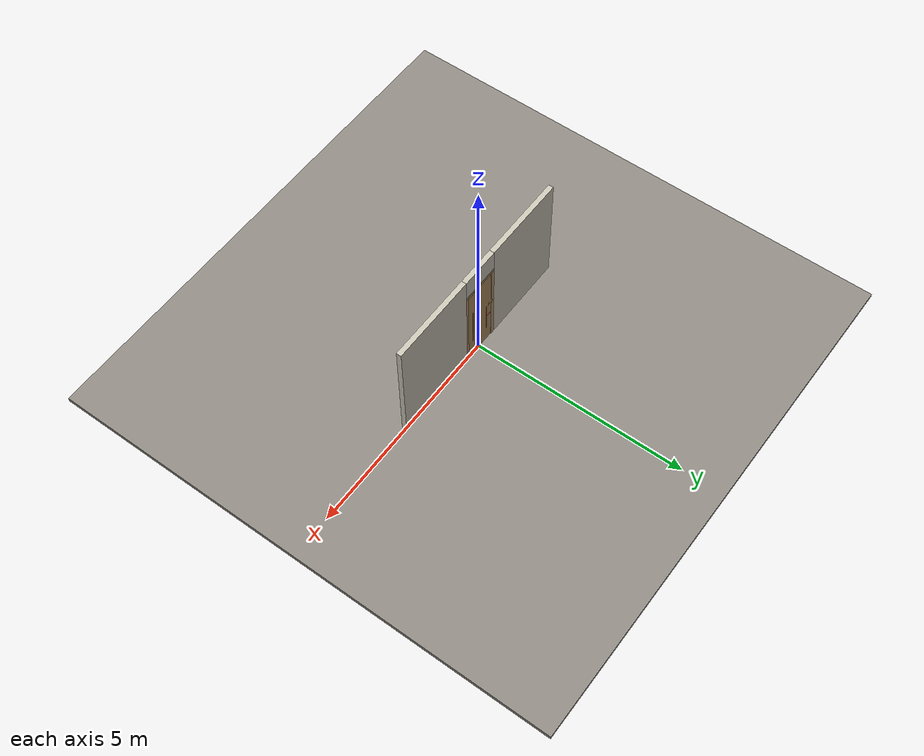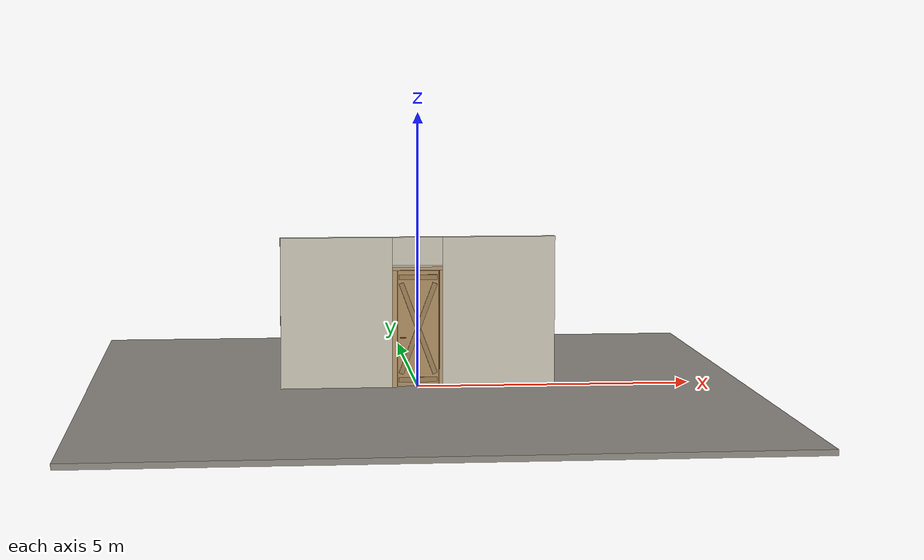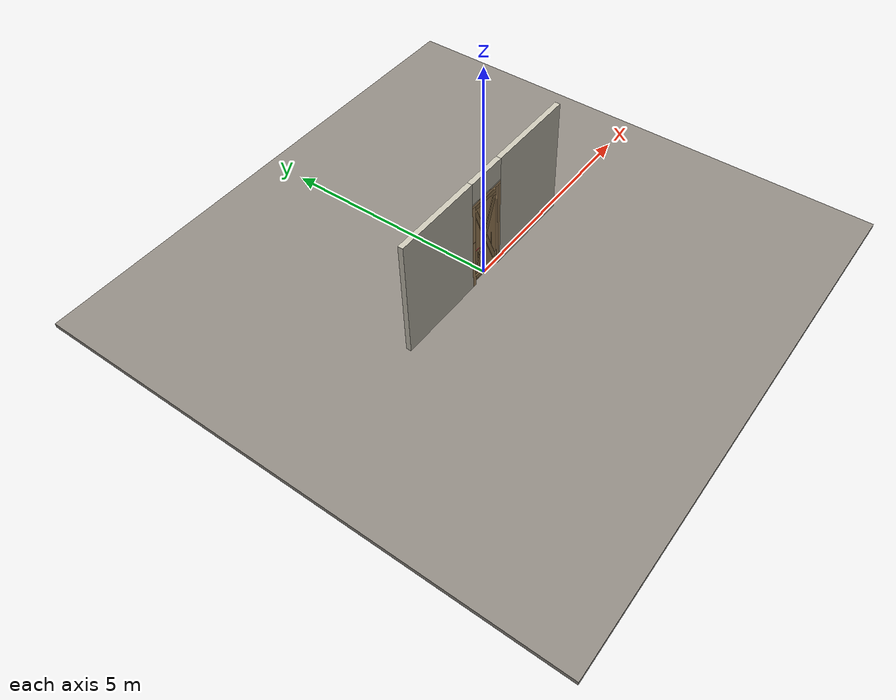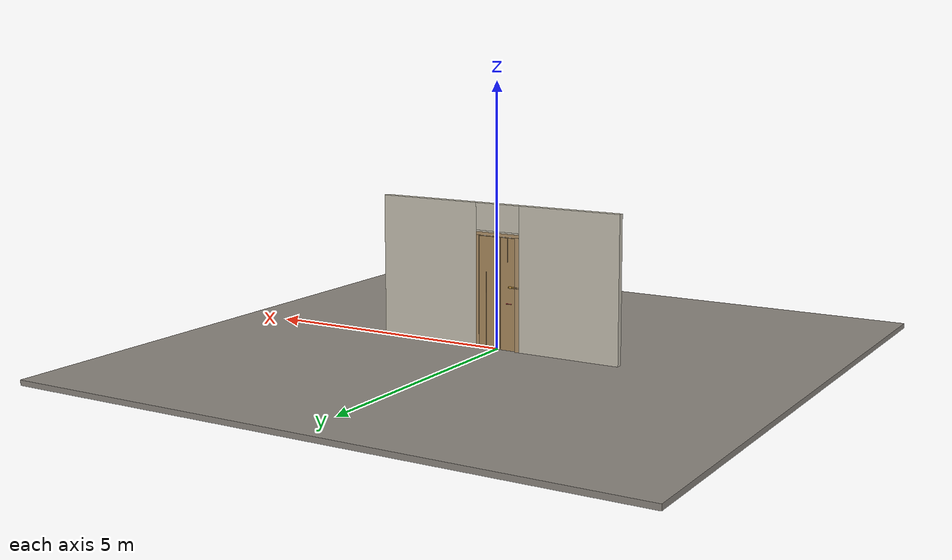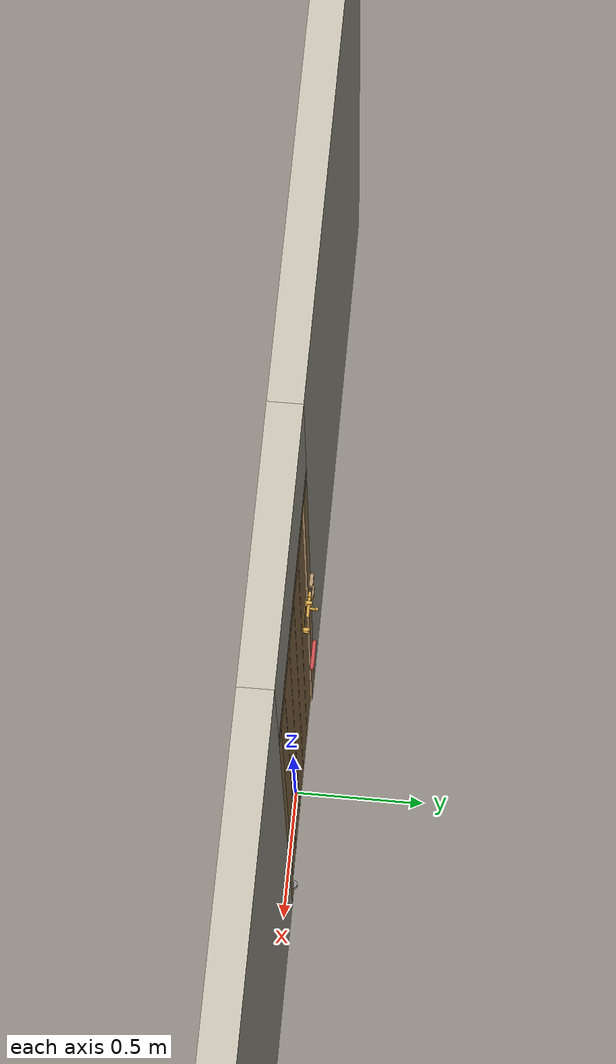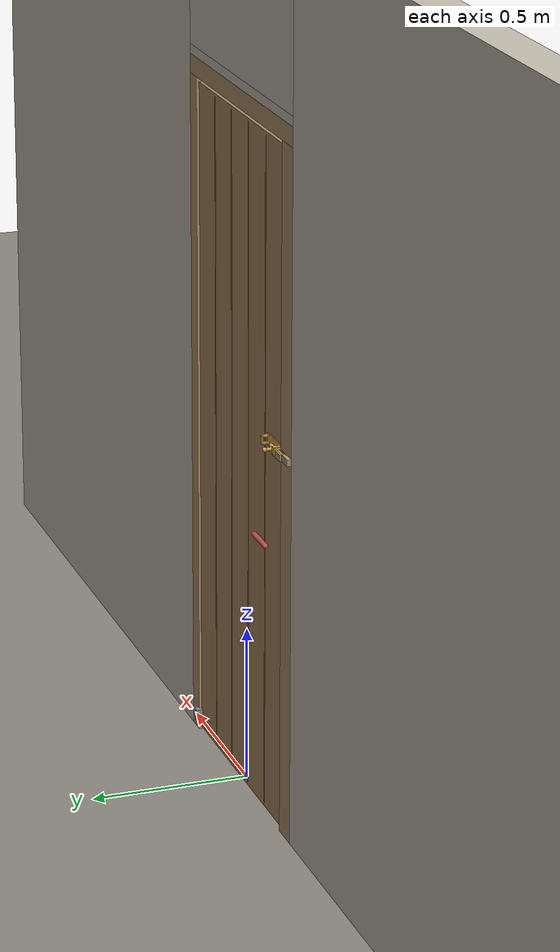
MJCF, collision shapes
<?xml version="1.0" ?>
<mujoco model="db0855_swing_single_full">
  <compiler angle="radian" meshdir="../../hardware" texturedir="../../textures" autolimits="true" inertiafromgeom="false"/>
  <option timestep="0.002" integrator="implicitfast" cone="elliptic" impratio="10" noslip_iterations="3">
    <flag multiccd="enable"/>
  </option>
  <size memory="16M"/>
  <default>
    <geom condim="4" solref="0.005 1" solimp="0.95 0.99 0.001"/>
    <joint solreflimit="0.005 1" solimplimit="0.95 0.99 0.001"/>
    <tendon solreflimit="0.005 1"/>
    <equality solref="0.002 1"/>
  </default>
  <visual>
    <headlight ambient="0.4 0.4 0.4" diffuse="0.7 0.7 0.7" specular="0.2 0.2 0.2"/>
    <quality shadowsize="4096"/>
    <map znear="0.01" zfar="60"/>
  </visual>
  <asset>
    <mesh name="hinge_7678ceaa91" file="hinge_7678ceaa91.obj"/>
    <mesh name="hinge_jamb_24fdb06e8a" file="hinge_jamb_24fdb06e8a.obj"/>
    <mesh name="ring_cc5c941a8a" file="ring_cc5c941a8a.obj"/>
    <material name="mat_floor" rgba="0.55 0.53 0.5 1" specular="0.2" shininess="0.15" reflectance="0"/>
    <material name="mat_wall" rgba="0.78 0.76 0.7 1" specular="0.2" shininess="0.1" reflectance="0"/>
    <material name="mat_hinge" rgba="0.55 0.56 0.58 1" specular="0.8" shininess="0.55" reflectance="0.4"/>
    <material name="mat_leaf" rgba="0.67 0.543 0.367 1" specular="0.2" shininess="0.45" reflectance="0"/>
    <material name="mat_leaf_brace" rgba="0.603 0.489 0.331 1" specular="0.2" shininess="0.2" reflectance="0"/>
    <material name="mat_op_wrought_iron" rgba="0.08 0.08 0.09 1" specular="0.56" shininess="0.25" reflectance="0.24"/>
    <material name="mat_op_brass" rgba="0.85 0.66 0.3 1" specular="0.8" shininess="0.75" reflectance="0.4"/>
    <material name="mat_frame" rgba="0.7 0.58 0.42 1" specular="0.2" shininess="0.5" reflectance="0"/>
    <texture name="skybox" type="skybox" builtin="gradient" rgb1="0.6 0.7 0.85" rgb2="0.9 0.92 0.95" width="256" height="256"/>
  </asset>
  <worldbody>
    <light name="sun" pos="1.5 -2.5 4" dir="-0.3 0.5 -0.8" directional="true" diffuse="0.8 0.8 0.8" specular="0.3 0.3 0.3" castshadow="true"/>
    <light name="fill" pos="-1.5 2.5 3" dir="0.3 -0.5 -0.7" directional="true" diffuse="0.35 0.35 0.4" castshadow="false"/>
    <camera name="robot_view" pos="0 -2.666313 1.812087" xyaxes="1 0 0 0 0.26963 0.962964" fovy="52"/>
    <camera name="far_view" pos="0 2.609312 1.812087" xyaxes="-1 0 0 0 -0.26963 0.962964" fovy="52"/>
    <camera name="iso" pos="-2.004737 -2.244263 2.234138" xyaxes="0.741536 -0.670913 0 0.242917 0.268487 0.932151" fovy="46"/>
    <camera name="detail_handle" pos="-0.095 -0.854 1.185" xyaxes="0.97561 0.219512 0 -0.070934 0.315262 0.94635" fovy="38"/>
    <geom name="floor" type="box" size="6 6 0.05" pos="0 0 -0.05" material="mat_floor" group="0" contype="1" conaffinity="1" friction="0.8 0.005 0.0001" density="2400"/>
    <geom name="wall_left" type="box" size="1.0125 0.0575 1.3735" pos="-1.4875 -0.0285 1.3735" material="mat_wall" group="0" contype="1" conaffinity="1" friction="0.6 0.005 0.0001" density="800"/>
    <geom name="wall_right" type="box" size="1.0275 0.0575 1.3735" pos="1.4725 -0.0285 1.3735" material="mat_wall" group="0" contype="1" conaffinity="1" friction="0.6 0.005 0.0001" density="800"/>
    <geom name="wall_header" type="box" size="0.46 0.0575 0.255" pos="-0.015 -0.0285 2.492" material="mat_wall" group="0" contype="1" conaffinity="1" friction="0.6 0.005 0.0001" density="800"/>
    <geom name="hinge_0_jamb" type="mesh" mesh="hinge_jamb_24fdb06e8a" pos="0.382 0.029 0.259" quat="0 0 0 1" material="mat_hinge" group="1" contype="0" conaffinity="0" density="7850"/>
    <geom name="hinge_1_jamb" type="mesh" mesh="hinge_jamb_24fdb06e8a" pos="0.382 0.029 1.0708" quat="0 0 0 1" material="mat_hinge" group="1" contype="0" conaffinity="0" density="7850"/>
    <geom name="hinge_2_jamb" type="mesh" mesh="hinge_jamb_24fdb06e8a" pos="0.382 0.029 1.9526" quat="0 0 0 1" material="mat_hinge" group="1" contype="0" conaffinity="0" density="7850"/>
    <geom name="leaf_aux_bolt_keeper_b" type="box" size="0.014 0.003 0.0005" pos="-0.3845 0.034 1.202" quat="0.5 0.5 0.5 0.5" material="mat_op_brass" group="1" contype="0" conaffinity="0" density="7800"/>
    <geom name="leaf_aux_bolt_keeper_l" type="box" size="0.003 0.01 0.0005" pos="-0.3845 0.023 1.215" quat="0.5 0.5 0.5 0.5" material="mat_op_brass" group="1" contype="0" conaffinity="0" density="7800"/>
    <geom name="leaf_aux_bolt_keeper_t" type="box" size="0.014 0.003 0.0005" pos="-0.3845 0.034 1.228" quat="0.5 0.5 0.5 0.5" material="mat_op_brass" group="1" contype="0" conaffinity="0" density="7800"/>
    <geom name="leaf_aux_bolt_keeper_r" type="box" size="0.003 0.01 0.0005" pos="-0.3845 0.045 1.215" quat="0.5 0.5 0.5 0.5" material="mat_op_brass" group="1" contype="0" conaffinity="0" density="7800"/>
    <geom name="jamb_hinge" type="box" size="0.03 0.0575 1.0735" pos="0.415 -0.0285 1.0735" material="mat_frame" group="0" contype="1" conaffinity="1" friction="0.6 0.005 0.0001" density="750"/>
    <geom name="strike_1215_wall_n" type="box" size="0.045 0.056 0.01" pos="-0.43 -0.03 1.215" material="mat_frame" group="0" contype="1" conaffinity="1" friction="0.6 0.005 0.0001" density="750"/>
    <geom name="strike_1215_wall_p" type="box" size="0.022 0.003 0.01" pos="-0.407 0.045 1.215" material="mat_frame" group="0" contype="1" conaffinity="1" friction="0.6 0.005 0.0001" density="750"/>
    <geom name="strike_1215_back" type="box" size="0.024 0.008 0.01" pos="-0.451 0.034 1.215" material="mat_frame" group="0" contype="1" conaffinity="1" friction="0.6 0.005 0.0001" density="750"/>
    <geom name="jamb_strike_0" type="box" size="0.045 0.0575 0.6025" pos="-0.43 -0.0285 0.6025" material="mat_frame" group="0" contype="1" conaffinity="1" friction="0.6 0.005 0.0001" density="750"/>
    <geom name="jamb_strike_1" type="box" size="0.045 0.0575 0.461" pos="-0.43 -0.0285 1.686" material="mat_frame" group="0" contype="1" conaffinity="1" friction="0.6 0.005 0.0001" density="750"/>
    <geom name="jamb_head" type="box" size="0.46 0.0575 0.03" pos="-0.015 -0.0285 2.177" material="mat_frame" group="0" contype="1" conaffinity="1" friction="0.6 0.005 0.0001" density="750"/>
    <geom name="head_stud" type="box" size="0.46 0.0575 0.015" pos="-0.015 -0.0285 2.222" material="mat_wall" group="0" contype="1" conaffinity="1" friction="0.6 0.005 0.0001" density="500"/>
    <geom name="stop_hinge" type="box" size="0.0055 0.016 1.0735" pos="0.3795 -0.0385 1.0735" material="mat_frame" group="0" contype="1" conaffinity="1" friction="0.6 0.005 0.0001" density="750"/>
    <geom name="stop_strike" type="box" size="0.0055 0.016 1.0735" pos="-0.3795 -0.0385 1.0735" material="mat_frame" group="0" contype="1" conaffinity="1" friction="0.6 0.005 0.0001" density="750"/>
    <geom name="stop_head" type="box" size="0.385 0.016 0.0055" pos="0 -0.0385 2.1415" material="mat_frame" group="0" contype="1" conaffinity="1" friction="0.6 0.005 0.0001" density="750"/>
    <site name="approach_point" pos="0 -1.5 0" quat="1 0 0 0" size="0.05" rgba="0.2 0.9 0.2 0.5" group="4"/>
    <site name="goal_point" pos="0 1.5 0" quat="1 0 0 0" size="0.05" rgba="0.2 0.9 0.2 0.5" group="4"/>
    <site name="door_plane_center" pos="0 0 1.0735" quat="1 0 0 0" size="0.02" rgba="0.2 0.9 0.2 0.5" group="4"/>
    <body name="leaf_riser" pos="0.385 0 0">
      <inertial pos="-0.003 0.029 0.055" mass="0.174012" quat="-0.5 0.5 0.5 0.5" diaginertia="0.000017053 0.00002732 0.00002732"/>
      <joint name="leaf_rise" type="slide" axis="0 0 1" limited="true" range="0 0.0176" damping="1" armature="0.5"/>
      <geom name="leaf_riser_marker" type="cylinder" size="0.014 0.018" pos="-0.003 0.029 0.055" material="mat_hinge" group="1" contype="0" conaffinity="0" density="7850"/>
      <body name="leaf" pos="0 0 0">
        <inertial pos="-0.383926 0.000521 1.069197" mass="30.383705" quat="0.50114 -0.50001 -0.499983 -0.498864" diaginertia="1.563852311 11.193999042 12.743251071"/>
        <joint name="leaf_hinge" type="hinge" axis="0 0 -1" pos="-0.003 0.029 0" limited="true" range="0 1.396263" damping="0.179937" frictionloss="1.122697" armature="0.02"/>
        <geom name="leaf_slab" type="box" size="0.381 0.022 1.0618" pos="-0.384 0 1.0708" material="mat_leaf" group="0" contype="1" conaffinity="1" friction="0.35 0.005 0.0001" density="1"/>
        <geom name="leaf_plank_gap_1" type="box" size="0.002 0.023 1.0518" pos="-0.1554 0 1.0708" material="mat_leaf_brace" group="1" contype="0" conaffinity="0" density="1"/>
        <geom name="leaf_plank_gap_2" type="box" size="0.002 0.023 1.0518" pos="-0.3078 0 1.0708" material="mat_leaf_brace" group="1" contype="0" conaffinity="0" density="1"/>
        <geom name="leaf_plank_gap_3" type="box" size="0.002 0.023 1.0518" pos="-0.4602 0 1.0708" material="mat_leaf_brace" group="1" contype="0" conaffinity="0" density="1"/>
        <geom name="leaf_plank_gap_4" type="box" size="0.002 0.023 1.0518" pos="-0.6126 0 1.0708" material="mat_leaf_brace" group="1" contype="0" conaffinity="0" density="1"/>
        <geom name="leaf_batten_12" type="box" size="0.351 0.01 0.045" pos="-0.384 -0.032 0.129" material="mat_leaf_brace" group="1" contype="0" conaffinity="0" density="1"/>
        <geom name="leaf_batten_201" type="box" size="0.351 0.01 0.045" pos="-0.384 -0.032 2.0126" material="mat_leaf_brace" group="1" contype="0" conaffinity="0" density="1"/>
        <geom name="leaf_brace_z" type="box" size="0.88656 0.01 0.045" pos="-0.384 -0.032 1.0708" quat="0.821489 0 0.570225 0" material="mat_leaf_brace" group="1" contype="0" conaffinity="0" density="1"/>
        <geom name="leaf_brace_x" type="box" size="0.88656 0.01 0.045" pos="-0.384 -0.032 1.0708" quat="0.821489 0 -0.570225 0" material="mat_leaf_brace" group="1" contype="0" conaffinity="0" density="1"/>
        <geom name="hinge_0" type="mesh" mesh="hinge_7678ceaa91" pos="-0.003 0.029 0.259" quat="0 0 0 1" material="mat_hinge" group="1" contype="0" conaffinity="0" density="7850"/>
        <geom name="hinge_1" type="mesh" mesh="hinge_7678ceaa91" pos="-0.003 0.029 1.0708" quat="0 0 0 1" material="mat_hinge" group="1" contype="0" conaffinity="0" density="7850"/>
        <geom name="hinge_2" type="mesh" mesh="hinge_7678ceaa91" pos="-0.003 0.029 1.9526" quat="0 0 0 1" material="mat_hinge" group="1" contype="0" conaffinity="0" density="7850"/>
        <geom name="leaf_ring_pull_n" type="mesh" mesh="ring_cc5c941a8a" pos="-0.66 -0.022 0.965" quat="0 0 -0.707107 0.707107" material="mat_op_wrought_iron" group="1" contype="0" conaffinity="0" density="3000"/>
        <geom name="leaf_ring_pull_col_n" type="capsule" size="0.008 0.05" pos="-0.66 -0.054 0.905" quat="0.707107 0 0.707107 0" material="mat_op_wrought_iron" group="3" contype="1" conaffinity="1" rgba="0.8 0.3 0.3 0.25" friction="0.7 0.01 0.0001" density="3000"/>
        <geom name="leaf_ring_pull_p" type="mesh" mesh="ring_cc5c941a8a" pos="-0.66 0.022 0.965" quat="0 0 0.707107 0.707107" material="mat_op_wrought_iron" group="1" contype="0" conaffinity="0" density="3000"/>
        <geom name="leaf_ring_pull_col_p" type="capsule" size="0.008 0.05" pos="-0.66 0.054 0.905" quat="0.707107 0 0.707107 0" material="mat_op_wrought_iron" group="3" contype="1" conaffinity="1" rgba="0.8 0.3 0.3 0.25" friction="0.7 0.01 0.0001" density="3000"/>
        <geom name="leaf_aux_bolt_plate" type="box" size="0.0595 0.019 0.001" pos="-0.6975 0.023 1.215" quat="0 0 0.707107 0.707107" material="mat_op_brass" group="1" contype="0" conaffinity="0" density="7800"/>
        <geom name="leaf_aux_bolt_guide_0_leg_n" type="box" size="0.006 0.002 0.0125" pos="-0.749 0.0345 1.204" quat="0 0 0.707107 0.707107" material="mat_op_brass" group="1" contype="0" conaffinity="0" density="7800"/>
        <geom name="leaf_aux_bolt_guide_0_leg_p" type="box" size="0.006 0.002 0.0125" pos="-0.749 0.0345 1.226" quat="0 0 0.707107 0.707107" material="mat_op_brass" group="1" contype="0" conaffinity="0" density="7800"/>
        <geom name="leaf_aux_bolt_guide_0_bridge" type="box" size="0.006 0.013 0.002" pos="-0.749 0.045 1.215" quat="0 0 0.707107 0.707107" material="mat_op_brass" group="1" contype="0" conaffinity="0" density="7800"/>
        <geom name="leaf_aux_bolt_guide_1_leg_n" type="box" size="0.006 0.002 0.0125" pos="-0.648 0.0345 1.204" quat="0 0 0.707107 0.707107" material="mat_op_brass" group="1" contype="0" conaffinity="0" density="7800"/>
        <geom name="leaf_aux_bolt_guide_1_leg_p" type="box" size="0.006 0.002 0.0125" pos="-0.648 0.0345 1.226" quat="0 0 0.707107 0.707107" material="mat_op_brass" group="1" contype="0" conaffinity="0" density="7800"/>
        <geom name="leaf_aux_bolt_guide_1_bridge" type="box" size="0.006 0.013 0.002" pos="-0.648 0.045 1.215" quat="0 0 0.707107 0.707107" material="mat_op_brass" group="1" contype="0" conaffinity="0" density="7800"/>
        <site name="leaf_ring_pull_grip_n" pos="-0.66 -0.054 0.905" quat="1 0 0 0" size="0.012" rgba="0.2 0.9 0.2 0.5" group="4"/>
        <site name="leaf_ring_pull_grip_p" pos="-0.66 0.054 0.905" quat="1 0 0 0" size="0.012" rgba="0.2 0.9 0.2 0.5" group="4"/>
        <site name="leaf_edge_mid" pos="-0.765 0 1.0618" quat="1 0 0 0" size="0.02" rgba="0.2 0.9 0.2 0.5" group="4"/>
        <body name="leaf_aux_bolt" pos="-0.765 0.034 1.215">
          <inertial pos="0.023563 0.00492 0" mass="0.111784" quat="0.998595 0 0 0.05299" diaginertia="0.000012212 0.000071985 0.000082309"/>
          <joint name="leaf_aux_bolt_slide" type="slide" axis="1 0 0" limited="true" range="0 0.001" damping="1" frictionloss="1" armature="0.1"/>
          <geom name="leaf_aux_bolt_rod" type="capsule" size="0.006 0.044" pos="0.02 0 0" quat="0.707107 0 -0.707107 0" material="mat_op_brass" group="0" contype="1" conaffinity="1" friction="0.6 0.005 0.0001" density="7850"/>
          <geom name="leaf_aux_bolt_knob" type="capsule" size="0.005 0.01" pos="0.035 0.015 0" quat="0.707107 -0.707107 0 0" material="mat_op_brass" group="0" contype="1" conaffinity="1" friction="0.6 0.005 0.0001" density="7850"/>
          <geom name="leaf_aux_bolt_knob_end" type="sphere" size="0.00675" pos="0.035 0.03 0" material="mat_op_brass" group="1" contype="0" conaffinity="0" density="7850"/>
          <site name="leaf_aux_bolt_grip" pos="0.035 0.034 0" quat="1 0 0 0" size="0.012" rgba="0.2 0.9 0.2 0.5" group="4"/>
        </body>
      </body>
    </body>
  </worldbody>
  <equality>
    <joint name="leaf_rise_couple" joint1="leaf_rise" joint2="leaf_hinge" polycoef="0 0.005093 0 0 0" active="true"/>
  </equality>
  <sensor>
    <jointpos name="leaf_hinge_pos" joint="leaf_hinge"/>
    <jointvel name="leaf_hinge_vel" joint="leaf_hinge"/>
    <jointpos name="leaf_aux_bolt_slide_pos" joint="leaf_aux_bolt_slide"/>
    <jointvel name="leaf_aux_bolt_slide_vel" joint="leaf_aux_bolt_slide"/>
  </sensor>
</mujoco>
